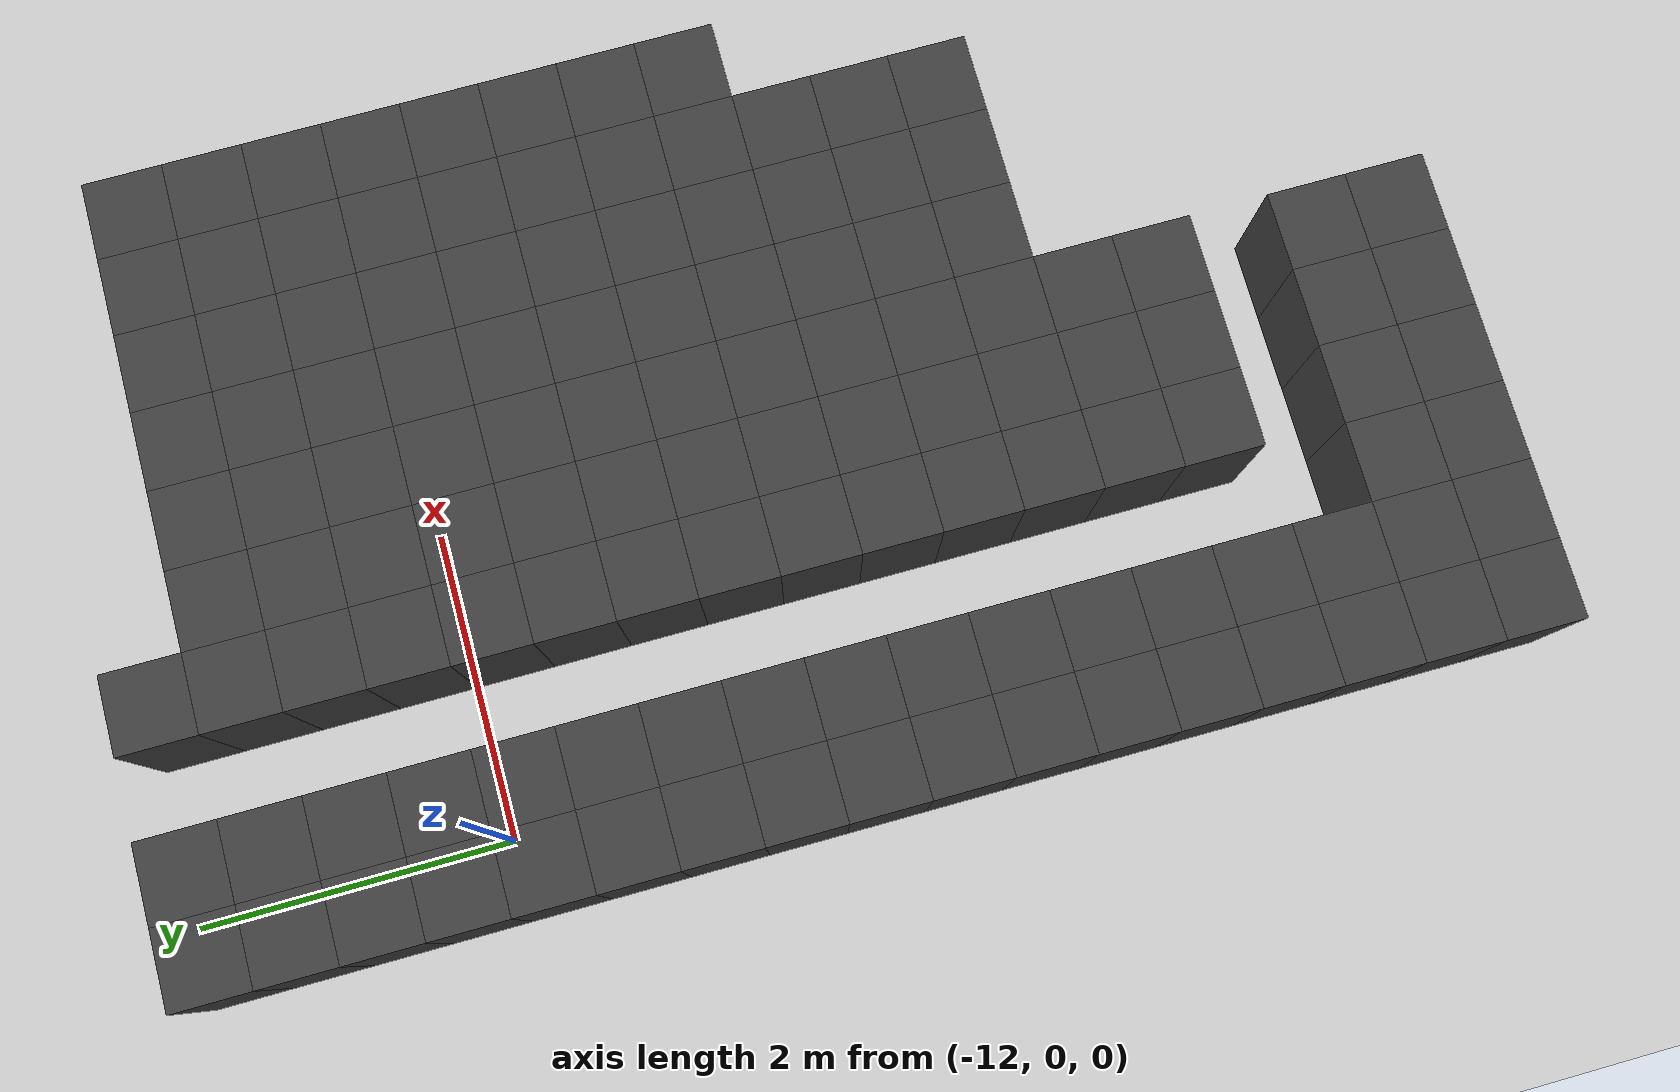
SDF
<sdf version="1.7">
 <world name="map_10726">
  <model name="ground_plane">
   <static>true</static>
   <link name="link">
    <collision name="collision">
     <geometry><plane><normal>0 0 1</normal><size>200 200</size></plane></geometry>
    </collision>
    <visual name="visual">
     <geometry><plane><normal>0 0 1</normal><size>200 200</size></plane></geometry>
     <material><ambient>0.8 0.8 0.8 1</ambient><diffuse>0.8 0.8 0.8 1</diffuse></material>
    </visual>
   </link>
  </model>
  <model name="maze_environment">
   <static>true</static>
   <link name="wall_962">
    <pose>-12.250 1.750 0.500 0 0 0</pose>
    <collision name="col"><geometry><box><size>0.5 0.5 1.0</size></box></geometry></collision>
    <visual name="vis">
     <geometry><box><size>0.5 0.5 1.0</size></box></geometry>
     <material><ambient>0.15 0.15 0.15 1</ambient><diffuse>0.25 0.25 0.25 1</diffuse></material>
    </visual>
   </link>
   <link name="wall_963">
    <pose>-11.750 1.750 0.500 0 0 0</pose>
    <collision name="col"><geometry><box><size>0.5 0.5 1.0</size></box></geometry></collision>
    <visual name="vis">
     <geometry><box><size>0.5 0.5 1.0</size></box></geometry>
     <material><ambient>0.15 0.15 0.15 1</ambient><diffuse>0.25 0.25 0.25 1</diffuse></material>
    </visual>
   </link>
   <link name="wall_964">
    <pose>-10.750 1.750 0.500 0 0 0</pose>
    <collision name="col"><geometry><box><size>0.5 0.5 1.0</size></box></geometry></collision>
    <visual name="vis">
     <geometry><box><size>0.5 0.5 1.0</size></box></geometry>
     <material><ambient>0.15 0.15 0.15 1</ambient><diffuse>0.25 0.25 0.25 1</diffuse></material>
    </visual>
   </link>
   <link name="wall_1004">
    <pose>-12.250 1.250 0.500 0 0 0</pose>
    <collision name="col"><geometry><box><size>0.5 0.5 1.0</size></box></geometry></collision>
    <visual name="vis">
     <geometry><box><size>0.5 0.5 1.0</size></box></geometry>
     <material><ambient>0.15 0.15 0.15 1</ambient><diffuse>0.25 0.25 0.25 1</diffuse></material>
    </visual>
   </link>
   <link name="wall_1005">
    <pose>-11.750 1.250 0.500 0 0 0</pose>
    <collision name="col"><geometry><box><size>0.5 0.5 1.0</size></box></geometry></collision>
    <visual name="vis">
     <geometry><box><size>0.5 0.5 1.0</size></box></geometry>
     <material><ambient>0.15 0.15 0.15 1</ambient><diffuse>0.25 0.25 0.25 1</diffuse></material>
    </visual>
   </link>
   <link name="wall_1006">
    <pose>-10.750 1.250 0.500 0 0 0</pose>
    <collision name="col"><geometry><box><size>0.5 0.5 1.0</size></box></geometry></collision>
    <visual name="vis">
     <geometry><box><size>0.5 0.5 1.0</size></box></geometry>
     <material><ambient>0.15 0.15 0.15 1</ambient><diffuse>0.25 0.25 0.25 1</diffuse></material>
    </visual>
   </link>
   <link name="wall_1007">
    <pose>-10.250 1.250 0.500 0 0 0</pose>
    <collision name="col"><geometry><box><size>0.5 0.5 1.0</size></box></geometry></collision>
    <visual name="vis">
     <geometry><box><size>0.5 0.5 1.0</size></box></geometry>
     <material><ambient>0.15 0.15 0.15 1</ambient><diffuse>0.25 0.25 0.25 1</diffuse></material>
    </visual>
   </link>
   <link name="wall_1008">
    <pose>-9.750 1.250 0.500 0 0 0</pose>
    <collision name="col"><geometry><box><size>0.5 0.5 1.0</size></box></geometry></collision>
    <visual name="vis">
     <geometry><box><size>0.5 0.5 1.0</size></box></geometry>
     <material><ambient>0.15 0.15 0.15 1</ambient><diffuse>0.25 0.25 0.25 1</diffuse></material>
    </visual>
   </link>
   <link name="wall_1009">
    <pose>-9.250 1.250 0.500 0 0 0</pose>
    <collision name="col"><geometry><box><size>0.5 0.5 1.0</size></box></geometry></collision>
    <visual name="vis">
     <geometry><box><size>0.5 0.5 1.0</size></box></geometry>
     <material><ambient>0.15 0.15 0.15 1</ambient><diffuse>0.25 0.25 0.25 1</diffuse></material>
    </visual>
   </link>
   <link name="wall_1010">
    <pose>-8.750 1.250 0.500 0 0 0</pose>
    <collision name="col"><geometry><box><size>0.5 0.5 1.0</size></box></geometry></collision>
    <visual name="vis">
     <geometry><box><size>0.5 0.5 1.0</size></box></geometry>
     <material><ambient>0.15 0.15 0.15 1</ambient><diffuse>0.25 0.25 0.25 1</diffuse></material>
    </visual>
   </link>
   <link name="wall_1011">
    <pose>-8.250 1.250 0.500 0 0 0</pose>
    <collision name="col"><geometry><box><size>0.5 0.5 1.0</size></box></geometry></collision>
    <visual name="vis">
     <geometry><box><size>0.5 0.5 1.0</size></box></geometry>
     <material><ambient>0.15 0.15 0.15 1</ambient><diffuse>0.25 0.25 0.25 1</diffuse></material>
    </visual>
   </link>
   <link name="wall_1012">
    <pose>-7.750 1.250 0.500 0 0 0</pose>
    <collision name="col"><geometry><box><size>0.5 0.5 1.0</size></box></geometry></collision>
    <visual name="vis">
     <geometry><box><size>0.5 0.5 1.0</size></box></geometry>
     <material><ambient>0.15 0.15 0.15 1</ambient><diffuse>0.25 0.25 0.25 1</diffuse></material>
    </visual>
   </link>
   <link name="wall_1046">
    <pose>-12.250 0.750 0.500 0 0 0</pose>
    <collision name="col"><geometry><box><size>0.5 0.5 1.0</size></box></geometry></collision>
    <visual name="vis">
     <geometry><box><size>0.5 0.5 1.0</size></box></geometry>
     <material><ambient>0.15 0.15 0.15 1</ambient><diffuse>0.25 0.25 0.25 1</diffuse></material>
    </visual>
   </link>
   <link name="wall_1047">
    <pose>-11.750 0.750 0.500 0 0 0</pose>
    <collision name="col"><geometry><box><size>0.5 0.5 1.0</size></box></geometry></collision>
    <visual name="vis">
     <geometry><box><size>0.5 0.5 1.0</size></box></geometry>
     <material><ambient>0.15 0.15 0.15 1</ambient><diffuse>0.25 0.25 0.25 1</diffuse></material>
    </visual>
   </link>
   <link name="wall_1048">
    <pose>-10.750 0.750 0.500 0 0 0</pose>
    <collision name="col"><geometry><box><size>0.5 0.5 1.0</size></box></geometry></collision>
    <visual name="vis">
     <geometry><box><size>0.5 0.5 1.0</size></box></geometry>
     <material><ambient>0.15 0.15 0.15 1</ambient><diffuse>0.25 0.25 0.25 1</diffuse></material>
    </visual>
   </link>
   <link name="wall_1049">
    <pose>-10.250 0.750 0.500 0 0 0</pose>
    <collision name="col"><geometry><box><size>0.5 0.5 1.0</size></box></geometry></collision>
    <visual name="vis">
     <geometry><box><size>0.5 0.5 1.0</size></box></geometry>
     <material><ambient>0.15 0.15 0.15 1</ambient><diffuse>0.25 0.25 0.25 1</diffuse></material>
    </visual>
   </link>
   <link name="wall_1050">
    <pose>-9.750 0.750 0.500 0 0 0</pose>
    <collision name="col"><geometry><box><size>0.5 0.5 1.0</size></box></geometry></collision>
    <visual name="vis">
     <geometry><box><size>0.5 0.5 1.0</size></box></geometry>
     <material><ambient>0.15 0.15 0.15 1</ambient><diffuse>0.25 0.25 0.25 1</diffuse></material>
    </visual>
   </link>
   <link name="wall_1051">
    <pose>-9.250 0.750 0.500 0 0 0</pose>
    <collision name="col"><geometry><box><size>0.5 0.5 1.0</size></box></geometry></collision>
    <visual name="vis">
     <geometry><box><size>0.5 0.5 1.0</size></box></geometry>
     <material><ambient>0.15 0.15 0.15 1</ambient><diffuse>0.25 0.25 0.25 1</diffuse></material>
    </visual>
   </link>
   <link name="wall_1052">
    <pose>-8.750 0.750 0.500 0 0 0</pose>
    <collision name="col"><geometry><box><size>0.5 0.5 1.0</size></box></geometry></collision>
    <visual name="vis">
     <geometry><box><size>0.5 0.5 1.0</size></box></geometry>
     <material><ambient>0.15 0.15 0.15 1</ambient><diffuse>0.25 0.25 0.25 1</diffuse></material>
    </visual>
   </link>
   <link name="wall_1053">
    <pose>-8.250 0.750 0.500 0 0 0</pose>
    <collision name="col"><geometry><box><size>0.5 0.5 1.0</size></box></geometry></collision>
    <visual name="vis">
     <geometry><box><size>0.5 0.5 1.0</size></box></geometry>
     <material><ambient>0.15 0.15 0.15 1</ambient><diffuse>0.25 0.25 0.25 1</diffuse></material>
    </visual>
   </link>
   <link name="wall_1054">
    <pose>-7.750 0.750 0.500 0 0 0</pose>
    <collision name="col"><geometry><box><size>0.5 0.5 1.0</size></box></geometry></collision>
    <visual name="vis">
     <geometry><box><size>0.5 0.5 1.0</size></box></geometry>
     <material><ambient>0.15 0.15 0.15 1</ambient><diffuse>0.25 0.25 0.25 1</diffuse></material>
    </visual>
   </link>
   <link name="wall_1078">
    <pose>-12.250 0.250 0.500 0 0 0</pose>
    <collision name="col"><geometry><box><size>0.5 0.5 1.0</size></box></geometry></collision>
    <visual name="vis">
     <geometry><box><size>0.5 0.5 1.0</size></box></geometry>
     <material><ambient>0.15 0.15 0.15 1</ambient><diffuse>0.25 0.25 0.25 1</diffuse></material>
    </visual>
   </link>
   <link name="wall_1079">
    <pose>-11.750 0.250 0.500 0 0 0</pose>
    <collision name="col"><geometry><box><size>0.5 0.5 1.0</size></box></geometry></collision>
    <visual name="vis">
     <geometry><box><size>0.5 0.5 1.0</size></box></geometry>
     <material><ambient>0.15 0.15 0.15 1</ambient><diffuse>0.25 0.25 0.25 1</diffuse></material>
    </visual>
   </link>
   <link name="wall_1080">
    <pose>-10.750 0.250 0.500 0 0 0</pose>
    <collision name="col"><geometry><box><size>0.5 0.5 1.0</size></box></geometry></collision>
    <visual name="vis">
     <geometry><box><size>0.5 0.5 1.0</size></box></geometry>
     <material><ambient>0.15 0.15 0.15 1</ambient><diffuse>0.25 0.25 0.25 1</diffuse></material>
    </visual>
   </link>
   <link name="wall_1081">
    <pose>-10.250 0.250 0.500 0 0 0</pose>
    <collision name="col"><geometry><box><size>0.5 0.5 1.0</size></box></geometry></collision>
    <visual name="vis">
     <geometry><box><size>0.5 0.5 1.0</size></box></geometry>
     <material><ambient>0.15 0.15 0.15 1</ambient><diffuse>0.25 0.25 0.25 1</diffuse></material>
    </visual>
   </link>
   <link name="wall_1082">
    <pose>-9.750 0.250 0.500 0 0 0</pose>
    <collision name="col"><geometry><box><size>0.5 0.5 1.0</size></box></geometry></collision>
    <visual name="vis">
     <geometry><box><size>0.5 0.5 1.0</size></box></geometry>
     <material><ambient>0.15 0.15 0.15 1</ambient><diffuse>0.25 0.25 0.25 1</diffuse></material>
    </visual>
   </link>
   <link name="wall_1083">
    <pose>-9.250 0.250 0.500 0 0 0</pose>
    <collision name="col"><geometry><box><size>0.5 0.5 1.0</size></box></geometry></collision>
    <visual name="vis">
     <geometry><box><size>0.5 0.5 1.0</size></box></geometry>
     <material><ambient>0.15 0.15 0.15 1</ambient><diffuse>0.25 0.25 0.25 1</diffuse></material>
    </visual>
   </link>
   <link name="wall_1084">
    <pose>-8.750 0.250 0.500 0 0 0</pose>
    <collision name="col"><geometry><box><size>0.5 0.5 1.0</size></box></geometry></collision>
    <visual name="vis">
     <geometry><box><size>0.5 0.5 1.0</size></box></geometry>
     <material><ambient>0.15 0.15 0.15 1</ambient><diffuse>0.25 0.25 0.25 1</diffuse></material>
    </visual>
   </link>
   <link name="wall_1085">
    <pose>-8.250 0.250 0.500 0 0 0</pose>
    <collision name="col"><geometry><box><size>0.5 0.5 1.0</size></box></geometry></collision>
    <visual name="vis">
     <geometry><box><size>0.5 0.5 1.0</size></box></geometry>
     <material><ambient>0.15 0.15 0.15 1</ambient><diffuse>0.25 0.25 0.25 1</diffuse></material>
    </visual>
   </link>
   <link name="wall_1086">
    <pose>-7.750 0.250 0.500 0 0 0</pose>
    <collision name="col"><geometry><box><size>0.5 0.5 1.0</size></box></geometry></collision>
    <visual name="vis">
     <geometry><box><size>0.5 0.5 1.0</size></box></geometry>
     <material><ambient>0.15 0.15 0.15 1</ambient><diffuse>0.25 0.25 0.25 1</diffuse></material>
    </visual>
   </link>
   <link name="wall_1119">
    <pose>-12.250 -0.250 0.500 0 0 0</pose>
    <collision name="col"><geometry><box><size>0.5 0.5 1.0</size></box></geometry></collision>
    <visual name="vis">
     <geometry><box><size>0.5 0.5 1.0</size></box></geometry>
     <material><ambient>0.15 0.15 0.15 1</ambient><diffuse>0.25 0.25 0.25 1</diffuse></material>
    </visual>
   </link>
   <link name="wall_1120">
    <pose>-11.750 -0.250 0.500 0 0 0</pose>
    <collision name="col"><geometry><box><size>0.5 0.5 1.0</size></box></geometry></collision>
    <visual name="vis">
     <geometry><box><size>0.5 0.5 1.0</size></box></geometry>
     <material><ambient>0.15 0.15 0.15 1</ambient><diffuse>0.25 0.25 0.25 1</diffuse></material>
    </visual>
   </link>
   <link name="wall_1121">
    <pose>-10.750 -0.250 0.500 0 0 0</pose>
    <collision name="col"><geometry><box><size>0.5 0.5 1.0</size></box></geometry></collision>
    <visual name="vis">
     <geometry><box><size>0.5 0.5 1.0</size></box></geometry>
     <material><ambient>0.15 0.15 0.15 1</ambient><diffuse>0.25 0.25 0.25 1</diffuse></material>
    </visual>
   </link>
   <link name="wall_1122">
    <pose>-10.250 -0.250 0.500 0 0 0</pose>
    <collision name="col"><geometry><box><size>0.5 0.5 1.0</size></box></geometry></collision>
    <visual name="vis">
     <geometry><box><size>0.5 0.5 1.0</size></box></geometry>
     <material><ambient>0.15 0.15 0.15 1</ambient><diffuse>0.25 0.25 0.25 1</diffuse></material>
    </visual>
   </link>
   <link name="wall_1123">
    <pose>-9.750 -0.250 0.500 0 0 0</pose>
    <collision name="col"><geometry><box><size>0.5 0.5 1.0</size></box></geometry></collision>
    <visual name="vis">
     <geometry><box><size>0.5 0.5 1.0</size></box></geometry>
     <material><ambient>0.15 0.15 0.15 1</ambient><diffuse>0.25 0.25 0.25 1</diffuse></material>
    </visual>
   </link>
   <link name="wall_1124">
    <pose>-9.250 -0.250 0.500 0 0 0</pose>
    <collision name="col"><geometry><box><size>0.5 0.5 1.0</size></box></geometry></collision>
    <visual name="vis">
     <geometry><box><size>0.5 0.5 1.0</size></box></geometry>
     <material><ambient>0.15 0.15 0.15 1</ambient><diffuse>0.25 0.25 0.25 1</diffuse></material>
    </visual>
   </link>
   <link name="wall_1125">
    <pose>-8.750 -0.250 0.500 0 0 0</pose>
    <collision name="col"><geometry><box><size>0.5 0.5 1.0</size></box></geometry></collision>
    <visual name="vis">
     <geometry><box><size>0.5 0.5 1.0</size></box></geometry>
     <material><ambient>0.15 0.15 0.15 1</ambient><diffuse>0.25 0.25 0.25 1</diffuse></material>
    </visual>
   </link>
   <link name="wall_1126">
    <pose>-8.250 -0.250 0.500 0 0 0</pose>
    <collision name="col"><geometry><box><size>0.5 0.5 1.0</size></box></geometry></collision>
    <visual name="vis">
     <geometry><box><size>0.5 0.5 1.0</size></box></geometry>
     <material><ambient>0.15 0.15 0.15 1</ambient><diffuse>0.25 0.25 0.25 1</diffuse></material>
    </visual>
   </link>
   <link name="wall_1127">
    <pose>-7.750 -0.250 0.500 0 0 0</pose>
    <collision name="col"><geometry><box><size>0.5 0.5 1.0</size></box></geometry></collision>
    <visual name="vis">
     <geometry><box><size>0.5 0.5 1.0</size></box></geometry>
     <material><ambient>0.15 0.15 0.15 1</ambient><diffuse>0.25 0.25 0.25 1</diffuse></material>
    </visual>
   </link>
   <link name="wall_1160">
    <pose>-12.250 -0.750 0.500 0 0 0</pose>
    <collision name="col"><geometry><box><size>0.5 0.5 1.0</size></box></geometry></collision>
    <visual name="vis">
     <geometry><box><size>0.5 0.5 1.0</size></box></geometry>
     <material><ambient>0.15 0.15 0.15 1</ambient><diffuse>0.25 0.25 0.25 1</diffuse></material>
    </visual>
   </link>
   <link name="wall_1161">
    <pose>-11.750 -0.750 0.500 0 0 0</pose>
    <collision name="col"><geometry><box><size>0.5 0.5 1.0</size></box></geometry></collision>
    <visual name="vis">
     <geometry><box><size>0.5 0.5 1.0</size></box></geometry>
     <material><ambient>0.15 0.15 0.15 1</ambient><diffuse>0.25 0.25 0.25 1</diffuse></material>
    </visual>
   </link>
   <link name="wall_1162">
    <pose>-10.750 -0.750 0.500 0 0 0</pose>
    <collision name="col"><geometry><box><size>0.5 0.5 1.0</size></box></geometry></collision>
    <visual name="vis">
     <geometry><box><size>0.5 0.5 1.0</size></box></geometry>
     <material><ambient>0.15 0.15 0.15 1</ambient><diffuse>0.25 0.25 0.25 1</diffuse></material>
    </visual>
   </link>
   <link name="wall_1163">
    <pose>-10.250 -0.750 0.500 0 0 0</pose>
    <collision name="col"><geometry><box><size>0.5 0.5 1.0</size></box></geometry></collision>
    <visual name="vis">
     <geometry><box><size>0.5 0.5 1.0</size></box></geometry>
     <material><ambient>0.15 0.15 0.15 1</ambient><diffuse>0.25 0.25 0.25 1</diffuse></material>
    </visual>
   </link>
   <link name="wall_1164">
    <pose>-9.750 -0.750 0.500 0 0 0</pose>
    <collision name="col"><geometry><box><size>0.5 0.5 1.0</size></box></geometry></collision>
    <visual name="vis">
     <geometry><box><size>0.5 0.5 1.0</size></box></geometry>
     <material><ambient>0.15 0.15 0.15 1</ambient><diffuse>0.25 0.25 0.25 1</diffuse></material>
    </visual>
   </link>
   <link name="wall_1165">
    <pose>-9.250 -0.750 0.500 0 0 0</pose>
    <collision name="col"><geometry><box><size>0.5 0.5 1.0</size></box></geometry></collision>
    <visual name="vis">
     <geometry><box><size>0.5 0.5 1.0</size></box></geometry>
     <material><ambient>0.15 0.15 0.15 1</ambient><diffuse>0.25 0.25 0.25 1</diffuse></material>
    </visual>
   </link>
   <link name="wall_1166">
    <pose>-8.750 -0.750 0.500 0 0 0</pose>
    <collision name="col"><geometry><box><size>0.5 0.5 1.0</size></box></geometry></collision>
    <visual name="vis">
     <geometry><box><size>0.5 0.5 1.0</size></box></geometry>
     <material><ambient>0.15 0.15 0.15 1</ambient><diffuse>0.25 0.25 0.25 1</diffuse></material>
    </visual>
   </link>
   <link name="wall_1167">
    <pose>-8.250 -0.750 0.500 0 0 0</pose>
    <collision name="col"><geometry><box><size>0.5 0.5 1.0</size></box></geometry></collision>
    <visual name="vis">
     <geometry><box><size>0.5 0.5 1.0</size></box></geometry>
     <material><ambient>0.15 0.15 0.15 1</ambient><diffuse>0.25 0.25 0.25 1</diffuse></material>
    </visual>
   </link>
   <link name="wall_1168">
    <pose>-7.750 -0.750 0.500 0 0 0</pose>
    <collision name="col"><geometry><box><size>0.5 0.5 1.0</size></box></geometry></collision>
    <visual name="vis">
     <geometry><box><size>0.5 0.5 1.0</size></box></geometry>
     <material><ambient>0.15 0.15 0.15 1</ambient><diffuse>0.25 0.25 0.25 1</diffuse></material>
    </visual>
   </link>
   <link name="wall_1200">
    <pose>-12.250 -1.250 0.500 0 0 0</pose>
    <collision name="col"><geometry><box><size>0.5 0.5 1.0</size></box></geometry></collision>
    <visual name="vis">
     <geometry><box><size>0.5 0.5 1.0</size></box></geometry>
     <material><ambient>0.15 0.15 0.15 1</ambient><diffuse>0.25 0.25 0.25 1</diffuse></material>
    </visual>
   </link>
   <link name="wall_1201">
    <pose>-11.750 -1.250 0.500 0 0 0</pose>
    <collision name="col"><geometry><box><size>0.5 0.5 1.0</size></box></geometry></collision>
    <visual name="vis">
     <geometry><box><size>0.5 0.5 1.0</size></box></geometry>
     <material><ambient>0.15 0.15 0.15 1</ambient><diffuse>0.25 0.25 0.25 1</diffuse></material>
    </visual>
   </link>
   <link name="wall_1202">
    <pose>-10.750 -1.250 0.500 0 0 0</pose>
    <collision name="col"><geometry><box><size>0.5 0.5 1.0</size></box></geometry></collision>
    <visual name="vis">
     <geometry><box><size>0.5 0.5 1.0</size></box></geometry>
     <material><ambient>0.15 0.15 0.15 1</ambient><diffuse>0.25 0.25 0.25 1</diffuse></material>
    </visual>
   </link>
   <link name="wall_1203">
    <pose>-10.250 -1.250 0.500 0 0 0</pose>
    <collision name="col"><geometry><box><size>0.5 0.5 1.0</size></box></geometry></collision>
    <visual name="vis">
     <geometry><box><size>0.5 0.5 1.0</size></box></geometry>
     <material><ambient>0.15 0.15 0.15 1</ambient><diffuse>0.25 0.25 0.25 1</diffuse></material>
    </visual>
   </link>
   <link name="wall_1204">
    <pose>-9.750 -1.250 0.500 0 0 0</pose>
    <collision name="col"><geometry><box><size>0.5 0.5 1.0</size></box></geometry></collision>
    <visual name="vis">
     <geometry><box><size>0.5 0.5 1.0</size></box></geometry>
     <material><ambient>0.15 0.15 0.15 1</ambient><diffuse>0.25 0.25 0.25 1</diffuse></material>
    </visual>
   </link>
   <link name="wall_1205">
    <pose>-9.250 -1.250 0.500 0 0 0</pose>
    <collision name="col"><geometry><box><size>0.5 0.5 1.0</size></box></geometry></collision>
    <visual name="vis">
     <geometry><box><size>0.5 0.5 1.0</size></box></geometry>
     <material><ambient>0.15 0.15 0.15 1</ambient><diffuse>0.25 0.25 0.25 1</diffuse></material>
    </visual>
   </link>
   <link name="wall_1206">
    <pose>-8.750 -1.250 0.500 0 0 0</pose>
    <collision name="col"><geometry><box><size>0.5 0.5 1.0</size></box></geometry></collision>
    <visual name="vis">
     <geometry><box><size>0.5 0.5 1.0</size></box></geometry>
     <material><ambient>0.15 0.15 0.15 1</ambient><diffuse>0.25 0.25 0.25 1</diffuse></material>
    </visual>
   </link>
   <link name="wall_1207">
    <pose>-8.250 -1.250 0.500 0 0 0</pose>
    <collision name="col"><geometry><box><size>0.5 0.5 1.0</size></box></geometry></collision>
    <visual name="vis">
     <geometry><box><size>0.5 0.5 1.0</size></box></geometry>
     <material><ambient>0.15 0.15 0.15 1</ambient><diffuse>0.25 0.25 0.25 1</diffuse></material>
    </visual>
   </link>
   <link name="wall_1208">
    <pose>-7.750 -1.250 0.500 0 0 0</pose>
    <collision name="col"><geometry><box><size>0.5 0.5 1.0</size></box></geometry></collision>
    <visual name="vis">
     <geometry><box><size>0.5 0.5 1.0</size></box></geometry>
     <material><ambient>0.15 0.15 0.15 1</ambient><diffuse>0.25 0.25 0.25 1</diffuse></material>
    </visual>
   </link>
   <link name="wall_1240">
    <pose>-12.250 -1.750 0.500 0 0 0</pose>
    <collision name="col"><geometry><box><size>0.5 0.5 1.0</size></box></geometry></collision>
    <visual name="vis">
     <geometry><box><size>0.5 0.5 1.0</size></box></geometry>
     <material><ambient>0.15 0.15 0.15 1</ambient><diffuse>0.25 0.25 0.25 1</diffuse></material>
    </visual>
   </link>
   <link name="wall_1241">
    <pose>-11.750 -1.750 0.500 0 0 0</pose>
    <collision name="col"><geometry><box><size>0.5 0.5 1.0</size></box></geometry></collision>
    <visual name="vis">
     <geometry><box><size>0.5 0.5 1.0</size></box></geometry>
     <material><ambient>0.15 0.15 0.15 1</ambient><diffuse>0.25 0.25 0.25 1</diffuse></material>
    </visual>
   </link>
   <link name="wall_1242">
    <pose>-10.750 -1.750 0.500 0 0 0</pose>
    <collision name="col"><geometry><box><size>0.5 0.5 1.0</size></box></geometry></collision>
    <visual name="vis">
     <geometry><box><size>0.5 0.5 1.0</size></box></geometry>
     <material><ambient>0.15 0.15 0.15 1</ambient><diffuse>0.25 0.25 0.25 1</diffuse></material>
    </visual>
   </link>
   <link name="wall_1243">
    <pose>-10.250 -1.750 0.500 0 0 0</pose>
    <collision name="col"><geometry><box><size>0.5 0.5 1.0</size></box></geometry></collision>
    <visual name="vis">
     <geometry><box><size>0.5 0.5 1.0</size></box></geometry>
     <material><ambient>0.15 0.15 0.15 1</ambient><diffuse>0.25 0.25 0.25 1</diffuse></material>
    </visual>
   </link>
   <link name="wall_1244">
    <pose>-9.750 -1.750 0.500 0 0 0</pose>
    <collision name="col"><geometry><box><size>0.5 0.5 1.0</size></box></geometry></collision>
    <visual name="vis">
     <geometry><box><size>0.5 0.5 1.0</size></box></geometry>
     <material><ambient>0.15 0.15 0.15 1</ambient><diffuse>0.25 0.25 0.25 1</diffuse></material>
    </visual>
   </link>
   <link name="wall_1245">
    <pose>-9.250 -1.750 0.500 0 0 0</pose>
    <collision name="col"><geometry><box><size>0.5 0.5 1.0</size></box></geometry></collision>
    <visual name="vis">
     <geometry><box><size>0.5 0.5 1.0</size></box></geometry>
     <material><ambient>0.15 0.15 0.15 1</ambient><diffuse>0.25 0.25 0.25 1</diffuse></material>
    </visual>
   </link>
   <link name="wall_1246">
    <pose>-8.750 -1.750 0.500 0 0 0</pose>
    <collision name="col"><geometry><box><size>0.5 0.5 1.0</size></box></geometry></collision>
    <visual name="vis">
     <geometry><box><size>0.5 0.5 1.0</size></box></geometry>
     <material><ambient>0.15 0.15 0.15 1</ambient><diffuse>0.25 0.25 0.25 1</diffuse></material>
    </visual>
   </link>
   <link name="wall_1247">
    <pose>-8.250 -1.750 0.500 0 0 0</pose>
    <collision name="col"><geometry><box><size>0.5 0.5 1.0</size></box></geometry></collision>
    <visual name="vis">
     <geometry><box><size>0.5 0.5 1.0</size></box></geometry>
     <material><ambient>0.15 0.15 0.15 1</ambient><diffuse>0.25 0.25 0.25 1</diffuse></material>
    </visual>
   </link>
   <link name="wall_1248">
    <pose>-7.750 -1.750 0.500 0 0 0</pose>
    <collision name="col"><geometry><box><size>0.5 0.5 1.0</size></box></geometry></collision>
    <visual name="vis">
     <geometry><box><size>0.5 0.5 1.0</size></box></geometry>
     <material><ambient>0.15 0.15 0.15 1</ambient><diffuse>0.25 0.25 0.25 1</diffuse></material>
    </visual>
   </link>
   <link name="wall_1272">
    <pose>-12.250 -2.250 0.500 0 0 0</pose>
    <collision name="col"><geometry><box><size>0.5 0.5 1.0</size></box></geometry></collision>
    <visual name="vis">
     <geometry><box><size>0.5 0.5 1.0</size></box></geometry>
     <material><ambient>0.15 0.15 0.15 1</ambient><diffuse>0.25 0.25 0.25 1</diffuse></material>
    </visual>
   </link>
   <link name="wall_1273">
    <pose>-11.750 -2.250 0.500 0 0 0</pose>
    <collision name="col"><geometry><box><size>0.5 0.5 1.0</size></box></geometry></collision>
    <visual name="vis">
     <geometry><box><size>0.5 0.5 1.0</size></box></geometry>
     <material><ambient>0.15 0.15 0.15 1</ambient><diffuse>0.25 0.25 0.25 1</diffuse></material>
    </visual>
   </link>
   <link name="wall_1274">
    <pose>-10.750 -2.250 0.500 0 0 0</pose>
    <collision name="col"><geometry><box><size>0.5 0.5 1.0</size></box></geometry></collision>
    <visual name="vis">
     <geometry><box><size>0.5 0.5 1.0</size></box></geometry>
     <material><ambient>0.15 0.15 0.15 1</ambient><diffuse>0.25 0.25 0.25 1</diffuse></material>
    </visual>
   </link>
   <link name="wall_1275">
    <pose>-10.250 -2.250 0.500 0 0 0</pose>
    <collision name="col"><geometry><box><size>0.5 0.5 1.0</size></box></geometry></collision>
    <visual name="vis">
     <geometry><box><size>0.5 0.5 1.0</size></box></geometry>
     <material><ambient>0.15 0.15 0.15 1</ambient><diffuse>0.25 0.25 0.25 1</diffuse></material>
    </visual>
   </link>
   <link name="wall_1276">
    <pose>-9.750 -2.250 0.500 0 0 0</pose>
    <collision name="col"><geometry><box><size>0.5 0.5 1.0</size></box></geometry></collision>
    <visual name="vis">
     <geometry><box><size>0.5 0.5 1.0</size></box></geometry>
     <material><ambient>0.15 0.15 0.15 1</ambient><diffuse>0.25 0.25 0.25 1</diffuse></material>
    </visual>
   </link>
   <link name="wall_1277">
    <pose>-9.250 -2.250 0.500 0 0 0</pose>
    <collision name="col"><geometry><box><size>0.5 0.5 1.0</size></box></geometry></collision>
    <visual name="vis">
     <geometry><box><size>0.5 0.5 1.0</size></box></geometry>
     <material><ambient>0.15 0.15 0.15 1</ambient><diffuse>0.25 0.25 0.25 1</diffuse></material>
    </visual>
   </link>
   <link name="wall_1278">
    <pose>-8.750 -2.250 0.500 0 0 0</pose>
    <collision name="col"><geometry><box><size>0.5 0.5 1.0</size></box></geometry></collision>
    <visual name="vis">
     <geometry><box><size>0.5 0.5 1.0</size></box></geometry>
     <material><ambient>0.15 0.15 0.15 1</ambient><diffuse>0.25 0.25 0.25 1</diffuse></material>
    </visual>
   </link>
   <link name="wall_1279">
    <pose>-8.250 -2.250 0.500 0 0 0</pose>
    <collision name="col"><geometry><box><size>0.5 0.5 1.0</size></box></geometry></collision>
    <visual name="vis">
     <geometry><box><size>0.5 0.5 1.0</size></box></geometry>
     <material><ambient>0.15 0.15 0.15 1</ambient><diffuse>0.25 0.25 0.25 1</diffuse></material>
    </visual>
   </link>
   <link name="wall_1280">
    <pose>-7.750 -2.250 0.500 0 0 0</pose>
    <collision name="col"><geometry><box><size>0.5 0.5 1.0</size></box></geometry></collision>
    <visual name="vis">
     <geometry><box><size>0.5 0.5 1.0</size></box></geometry>
     <material><ambient>0.15 0.15 0.15 1</ambient><diffuse>0.25 0.25 0.25 1</diffuse></material>
    </visual>
   </link>
   <link name="wall_1304">
    <pose>-12.250 -2.750 0.500 0 0 0</pose>
    <collision name="col"><geometry><box><size>0.5 0.5 1.0</size></box></geometry></collision>
    <visual name="vis">
     <geometry><box><size>0.5 0.5 1.0</size></box></geometry>
     <material><ambient>0.15 0.15 0.15 1</ambient><diffuse>0.25 0.25 0.25 1</diffuse></material>
    </visual>
   </link>
   <link name="wall_1305">
    <pose>-11.750 -2.750 0.500 0 0 0</pose>
    <collision name="col"><geometry><box><size>0.5 0.5 1.0</size></box></geometry></collision>
    <visual name="vis">
     <geometry><box><size>0.5 0.5 1.0</size></box></geometry>
     <material><ambient>0.15 0.15 0.15 1</ambient><diffuse>0.25 0.25 0.25 1</diffuse></material>
    </visual>
   </link>
   <link name="wall_1306">
    <pose>-10.750 -2.750 0.500 0 0 0</pose>
    <collision name="col"><geometry><box><size>0.5 0.5 1.0</size></box></geometry></collision>
    <visual name="vis">
     <geometry><box><size>0.5 0.5 1.0</size></box></geometry>
     <material><ambient>0.15 0.15 0.15 1</ambient><diffuse>0.25 0.25 0.25 1</diffuse></material>
    </visual>
   </link>
   <link name="wall_1307">
    <pose>-10.250 -2.750 0.500 0 0 0</pose>
    <collision name="col"><geometry><box><size>0.5 0.5 1.0</size></box></geometry></collision>
    <visual name="vis">
     <geometry><box><size>0.5 0.5 1.0</size></box></geometry>
     <material><ambient>0.15 0.15 0.15 1</ambient><diffuse>0.25 0.25 0.25 1</diffuse></material>
    </visual>
   </link>
   <link name="wall_1308">
    <pose>-9.750 -2.750 0.500 0 0 0</pose>
    <collision name="col"><geometry><box><size>0.5 0.5 1.0</size></box></geometry></collision>
    <visual name="vis">
     <geometry><box><size>0.5 0.5 1.0</size></box></geometry>
     <material><ambient>0.15 0.15 0.15 1</ambient><diffuse>0.25 0.25 0.25 1</diffuse></material>
    </visual>
   </link>
   <link name="wall_1309">
    <pose>-9.250 -2.750 0.500 0 0 0</pose>
    <collision name="col"><geometry><box><size>0.5 0.5 1.0</size></box></geometry></collision>
    <visual name="vis">
     <geometry><box><size>0.5 0.5 1.0</size></box></geometry>
     <material><ambient>0.15 0.15 0.15 1</ambient><diffuse>0.25 0.25 0.25 1</diffuse></material>
    </visual>
   </link>
   <link name="wall_1310">
    <pose>-8.750 -2.750 0.500 0 0 0</pose>
    <collision name="col"><geometry><box><size>0.5 0.5 1.0</size></box></geometry></collision>
    <visual name="vis">
     <geometry><box><size>0.5 0.5 1.0</size></box></geometry>
     <material><ambient>0.15 0.15 0.15 1</ambient><diffuse>0.25 0.25 0.25 1</diffuse></material>
    </visual>
   </link>
   <link name="wall_1311">
    <pose>-8.250 -2.750 0.500 0 0 0</pose>
    <collision name="col"><geometry><box><size>0.5 0.5 1.0</size></box></geometry></collision>
    <visual name="vis">
     <geometry><box><size>0.5 0.5 1.0</size></box></geometry>
     <material><ambient>0.15 0.15 0.15 1</ambient><diffuse>0.25 0.25 0.25 1</diffuse></material>
    </visual>
   </link>
   <link name="wall_1328">
    <pose>-12.250 -3.250 0.500 0 0 0</pose>
    <collision name="col"><geometry><box><size>0.5 0.5 1.0</size></box></geometry></collision>
    <visual name="vis">
     <geometry><box><size>0.5 0.5 1.0</size></box></geometry>
     <material><ambient>0.15 0.15 0.15 1</ambient><diffuse>0.25 0.25 0.25 1</diffuse></material>
    </visual>
   </link>
   <link name="wall_1329">
    <pose>-11.750 -3.250 0.500 0 0 0</pose>
    <collision name="col"><geometry><box><size>0.5 0.5 1.0</size></box></geometry></collision>
    <visual name="vis">
     <geometry><box><size>0.5 0.5 1.0</size></box></geometry>
     <material><ambient>0.15 0.15 0.15 1</ambient><diffuse>0.25 0.25 0.25 1</diffuse></material>
    </visual>
   </link>
   <link name="wall_1330">
    <pose>-10.750 -3.250 0.500 0 0 0</pose>
    <collision name="col"><geometry><box><size>0.5 0.5 1.0</size></box></geometry></collision>
    <visual name="vis">
     <geometry><box><size>0.5 0.5 1.0</size></box></geometry>
     <material><ambient>0.15 0.15 0.15 1</ambient><diffuse>0.25 0.25 0.25 1</diffuse></material>
    </visual>
   </link>
   <link name="wall_1331">
    <pose>-10.250 -3.250 0.500 0 0 0</pose>
    <collision name="col"><geometry><box><size>0.5 0.5 1.0</size></box></geometry></collision>
    <visual name="vis">
     <geometry><box><size>0.5 0.5 1.0</size></box></geometry>
     <material><ambient>0.15 0.15 0.15 1</ambient><diffuse>0.25 0.25 0.25 1</diffuse></material>
    </visual>
   </link>
   <link name="wall_1332">
    <pose>-9.750 -3.250 0.500 0 0 0</pose>
    <collision name="col"><geometry><box><size>0.5 0.5 1.0</size></box></geometry></collision>
    <visual name="vis">
     <geometry><box><size>0.5 0.5 1.0</size></box></geometry>
     <material><ambient>0.15 0.15 0.15 1</ambient><diffuse>0.25 0.25 0.25 1</diffuse></material>
    </visual>
   </link>
   <link name="wall_1333">
    <pose>-9.250 -3.250 0.500 0 0 0</pose>
    <collision name="col"><geometry><box><size>0.5 0.5 1.0</size></box></geometry></collision>
    <visual name="vis">
     <geometry><box><size>0.5 0.5 1.0</size></box></geometry>
     <material><ambient>0.15 0.15 0.15 1</ambient><diffuse>0.25 0.25 0.25 1</diffuse></material>
    </visual>
   </link>
   <link name="wall_1334">
    <pose>-8.750 -3.250 0.500 0 0 0</pose>
    <collision name="col"><geometry><box><size>0.5 0.5 1.0</size></box></geometry></collision>
    <visual name="vis">
     <geometry><box><size>0.5 0.5 1.0</size></box></geometry>
     <material><ambient>0.15 0.15 0.15 1</ambient><diffuse>0.25 0.25 0.25 1</diffuse></material>
    </visual>
   </link>
   <link name="wall_1335">
    <pose>-8.250 -3.250 0.500 0 0 0</pose>
    <collision name="col"><geometry><box><size>0.5 0.5 1.0</size></box></geometry></collision>
    <visual name="vis">
     <geometry><box><size>0.5 0.5 1.0</size></box></geometry>
     <material><ambient>0.15 0.15 0.15 1</ambient><diffuse>0.25 0.25 0.25 1</diffuse></material>
    </visual>
   </link>
   <link name="wall_1360">
    <pose>-12.250 -3.750 0.500 0 0 0</pose>
    <collision name="col"><geometry><box><size>0.5 0.5 1.0</size></box></geometry></collision>
    <visual name="vis">
     <geometry><box><size>0.5 0.5 1.0</size></box></geometry>
     <material><ambient>0.15 0.15 0.15 1</ambient><diffuse>0.25 0.25 0.25 1</diffuse></material>
    </visual>
   </link>
   <link name="wall_1361">
    <pose>-11.750 -3.750 0.500 0 0 0</pose>
    <collision name="col"><geometry><box><size>0.5 0.5 1.0</size></box></geometry></collision>
    <visual name="vis">
     <geometry><box><size>0.5 0.5 1.0</size></box></geometry>
     <material><ambient>0.15 0.15 0.15 1</ambient><diffuse>0.25 0.25 0.25 1</diffuse></material>
    </visual>
   </link>
   <link name="wall_1362">
    <pose>-10.750 -3.750 0.500 0 0 0</pose>
    <collision name="col"><geometry><box><size>0.5 0.5 1.0</size></box></geometry></collision>
    <visual name="vis">
     <geometry><box><size>0.5 0.5 1.0</size></box></geometry>
     <material><ambient>0.15 0.15 0.15 1</ambient><diffuse>0.25 0.25 0.25 1</diffuse></material>
    </visual>
   </link>
   <link name="wall_1363">
    <pose>-10.250 -3.750 0.500 0 0 0</pose>
    <collision name="col"><geometry><box><size>0.5 0.5 1.0</size></box></geometry></collision>
    <visual name="vis">
     <geometry><box><size>0.5 0.5 1.0</size></box></geometry>
     <material><ambient>0.15 0.15 0.15 1</ambient><diffuse>0.25 0.25 0.25 1</diffuse></material>
    </visual>
   </link>
   <link name="wall_1364">
    <pose>-9.750 -3.750 0.500 0 0 0</pose>
    <collision name="col"><geometry><box><size>0.5 0.5 1.0</size></box></geometry></collision>
    <visual name="vis">
     <geometry><box><size>0.5 0.5 1.0</size></box></geometry>
     <material><ambient>0.15 0.15 0.15 1</ambient><diffuse>0.25 0.25 0.25 1</diffuse></material>
    </visual>
   </link>
   <link name="wall_1365">
    <pose>-9.250 -3.750 0.500 0 0 0</pose>
    <collision name="col"><geometry><box><size>0.5 0.5 1.0</size></box></geometry></collision>
    <visual name="vis">
     <geometry><box><size>0.5 0.5 1.0</size></box></geometry>
     <material><ambient>0.15 0.15 0.15 1</ambient><diffuse>0.25 0.25 0.25 1</diffuse></material>
    </visual>
   </link>
   <link name="wall_1366">
    <pose>-8.750 -3.750 0.500 0 0 0</pose>
    <collision name="col"><geometry><box><size>0.5 0.5 1.0</size></box></geometry></collision>
    <visual name="vis">
     <geometry><box><size>0.5 0.5 1.0</size></box></geometry>
     <material><ambient>0.15 0.15 0.15 1</ambient><diffuse>0.25 0.25 0.25 1</diffuse></material>
    </visual>
   </link>
   <link name="wall_1367">
    <pose>-8.250 -3.750 0.500 0 0 0</pose>
    <collision name="col"><geometry><box><size>0.5 0.5 1.0</size></box></geometry></collision>
    <visual name="vis">
     <geometry><box><size>0.5 0.5 1.0</size></box></geometry>
     <material><ambient>0.15 0.15 0.15 1</ambient><diffuse>0.25 0.25 0.25 1</diffuse></material>
    </visual>
   </link>
   <link name="wall_1399">
    <pose>-12.250 -4.250 0.500 0 0 0</pose>
    <collision name="col"><geometry><box><size>0.5 0.5 1.0</size></box></geometry></collision>
    <visual name="vis">
     <geometry><box><size>0.5 0.5 1.0</size></box></geometry>
     <material><ambient>0.15 0.15 0.15 1</ambient><diffuse>0.25 0.25 0.25 1</diffuse></material>
    </visual>
   </link>
   <link name="wall_1400">
    <pose>-11.750 -4.250 0.500 0 0 0</pose>
    <collision name="col"><geometry><box><size>0.5 0.5 1.0</size></box></geometry></collision>
    <visual name="vis">
     <geometry><box><size>0.5 0.5 1.0</size></box></geometry>
     <material><ambient>0.15 0.15 0.15 1</ambient><diffuse>0.25 0.25 0.25 1</diffuse></material>
    </visual>
   </link>
   <link name="wall_1401">
    <pose>-10.750 -4.250 0.500 0 0 0</pose>
    <collision name="col"><geometry><box><size>0.5 0.5 1.0</size></box></geometry></collision>
    <visual name="vis">
     <geometry><box><size>0.5 0.5 1.0</size></box></geometry>
     <material><ambient>0.15 0.15 0.15 1</ambient><diffuse>0.25 0.25 0.25 1</diffuse></material>
    </visual>
   </link>
   <link name="wall_1402">
    <pose>-10.250 -4.250 0.500 0 0 0</pose>
    <collision name="col"><geometry><box><size>0.5 0.5 1.0</size></box></geometry></collision>
    <visual name="vis">
     <geometry><box><size>0.5 0.5 1.0</size></box></geometry>
     <material><ambient>0.15 0.15 0.15 1</ambient><diffuse>0.25 0.25 0.25 1</diffuse></material>
    </visual>
   </link>
   <link name="wall_1403">
    <pose>-9.750 -4.250 0.500 0 0 0</pose>
    <collision name="col"><geometry><box><size>0.5 0.5 1.0</size></box></geometry></collision>
    <visual name="vis">
     <geometry><box><size>0.5 0.5 1.0</size></box></geometry>
     <material><ambient>0.15 0.15 0.15 1</ambient><diffuse>0.25 0.25 0.25 1</diffuse></material>
    </visual>
   </link>
   <link name="wall_1433">
    <pose>-12.250 -4.750 0.500 0 0 0</pose>
    <collision name="col"><geometry><box><size>0.5 0.5 1.0</size></box></geometry></collision>
    <visual name="vis">
     <geometry><box><size>0.5 0.5 1.0</size></box></geometry>
     <material><ambient>0.15 0.15 0.15 1</ambient><diffuse>0.25 0.25 0.25 1</diffuse></material>
    </visual>
   </link>
   <link name="wall_1434">
    <pose>-11.750 -4.750 0.500 0 0 0</pose>
    <collision name="col"><geometry><box><size>0.5 0.5 1.0</size></box></geometry></collision>
    <visual name="vis">
     <geometry><box><size>0.5 0.5 1.0</size></box></geometry>
     <material><ambient>0.15 0.15 0.15 1</ambient><diffuse>0.25 0.25 0.25 1</diffuse></material>
    </visual>
   </link>
   <link name="wall_1435">
    <pose>-10.750 -4.750 0.500 0 0 0</pose>
    <collision name="col"><geometry><box><size>0.5 0.5 1.0</size></box></geometry></collision>
    <visual name="vis">
     <geometry><box><size>0.5 0.5 1.0</size></box></geometry>
     <material><ambient>0.15 0.15 0.15 1</ambient><diffuse>0.25 0.25 0.25 1</diffuse></material>
    </visual>
   </link>
   <link name="wall_1436">
    <pose>-10.250 -4.750 0.500 0 0 0</pose>
    <collision name="col"><geometry><box><size>0.5 0.5 1.0</size></box></geometry></collision>
    <visual name="vis">
     <geometry><box><size>0.5 0.5 1.0</size></box></geometry>
     <material><ambient>0.15 0.15 0.15 1</ambient><diffuse>0.25 0.25 0.25 1</diffuse></material>
    </visual>
   </link>
   <link name="wall_1437">
    <pose>-9.750 -4.750 0.500 0 0 0</pose>
    <collision name="col"><geometry><box><size>0.5 0.5 1.0</size></box></geometry></collision>
    <visual name="vis">
     <geometry><box><size>0.5 0.5 1.0</size></box></geometry>
     <material><ambient>0.15 0.15 0.15 1</ambient><diffuse>0.25 0.25 0.25 1</diffuse></material>
    </visual>
   </link>
   <link name="wall_1474">
    <pose>-12.250 -5.250 0.500 0 0 0</pose>
    <collision name="col"><geometry><box><size>0.5 0.5 1.0</size></box></geometry></collision>
    <visual name="vis">
     <geometry><box><size>0.5 0.5 1.0</size></box></geometry>
     <material><ambient>0.15 0.15 0.15 1</ambient><diffuse>0.25 0.25 0.25 1</diffuse></material>
    </visual>
   </link>
   <link name="wall_1475">
    <pose>-11.750 -5.250 0.500 0 0 0</pose>
    <collision name="col"><geometry><box><size>0.5 0.5 1.0</size></box></geometry></collision>
    <visual name="vis">
     <geometry><box><size>0.5 0.5 1.0</size></box></geometry>
     <material><ambient>0.15 0.15 0.15 1</ambient><diffuse>0.25 0.25 0.25 1</diffuse></material>
    </visual>
   </link>
   <link name="wall_1512">
    <pose>-12.250 -5.750 0.500 0 0 0</pose>
    <collision name="col"><geometry><box><size>0.5 0.5 1.0</size></box></geometry></collision>
    <visual name="vis">
     <geometry><box><size>0.5 0.5 1.0</size></box></geometry>
     <material><ambient>0.15 0.15 0.15 1</ambient><diffuse>0.25 0.25 0.25 1</diffuse></material>
    </visual>
   </link>
   <link name="wall_1513">
    <pose>-11.750 -5.750 0.500 0 0 0</pose>
    <collision name="col"><geometry><box><size>0.5 0.5 1.0</size></box></geometry></collision>
    <visual name="vis">
     <geometry><box><size>0.5 0.5 1.0</size></box></geometry>
     <material><ambient>0.15 0.15 0.15 1</ambient><diffuse>0.25 0.25 0.25 1</diffuse></material>
    </visual>
   </link>
   <link name="wall_1514">
    <pose>-11.250 -5.750 0.500 0 0 0</pose>
    <collision name="col"><geometry><box><size>0.5 0.5 1.0</size></box></geometry></collision>
    <visual name="vis">
     <geometry><box><size>0.5 0.5 1.0</size></box></geometry>
     <material><ambient>0.15 0.15 0.15 1</ambient><diffuse>0.25 0.25 0.25 1</diffuse></material>
    </visual>
   </link>
   <link name="wall_1515">
    <pose>-10.750 -5.750 0.500 0 0 0</pose>
    <collision name="col"><geometry><box><size>0.5 0.5 1.0</size></box></geometry></collision>
    <visual name="vis">
     <geometry><box><size>0.5 0.5 1.0</size></box></geometry>
     <material><ambient>0.15 0.15 0.15 1</ambient><diffuse>0.25 0.25 0.25 1</diffuse></material>
    </visual>
   </link>
   <link name="wall_1516">
    <pose>-10.250 -5.750 0.500 0 0 0</pose>
    <collision name="col"><geometry><box><size>0.5 0.5 1.0</size></box></geometry></collision>
    <visual name="vis">
     <geometry><box><size>0.5 0.5 1.0</size></box></geometry>
     <material><ambient>0.15 0.15 0.15 1</ambient><diffuse>0.25 0.25 0.25 1</diffuse></material>
    </visual>
   </link>
   <link name="wall_1517">
    <pose>-9.750 -5.750 0.500 0 0 0</pose>
    <collision name="col"><geometry><box><size>0.5 0.5 1.0</size></box></geometry></collision>
    <visual name="vis">
     <geometry><box><size>0.5 0.5 1.0</size></box></geometry>
     <material><ambient>0.15 0.15 0.15 1</ambient><diffuse>0.25 0.25 0.25 1</diffuse></material>
    </visual>
   </link>
   <link name="wall_1554">
    <pose>-12.250 -6.250 0.500 0 0 0</pose>
    <collision name="col"><geometry><box><size>0.5 0.5 1.0</size></box></geometry></collision>
    <visual name="vis">
     <geometry><box><size>0.5 0.5 1.0</size></box></geometry>
     <material><ambient>0.15 0.15 0.15 1</ambient><diffuse>0.25 0.25 0.25 1</diffuse></material>
    </visual>
   </link>
   <link name="wall_1555">
    <pose>-11.750 -6.250 0.500 0 0 0</pose>
    <collision name="col"><geometry><box><size>0.5 0.5 1.0</size></box></geometry></collision>
    <visual name="vis">
     <geometry><box><size>0.5 0.5 1.0</size></box></geometry>
     <material><ambient>0.15 0.15 0.15 1</ambient><diffuse>0.25 0.25 0.25 1</diffuse></material>
    </visual>
   </link>
   <link name="wall_1556">
    <pose>-11.250 -6.250 0.500 0 0 0</pose>
    <collision name="col"><geometry><box><size>0.5 0.5 1.0</size></box></geometry></collision>
    <visual name="vis">
     <geometry><box><size>0.5 0.5 1.0</size></box></geometry>
     <material><ambient>0.15 0.15 0.15 1</ambient><diffuse>0.25 0.25 0.25 1</diffuse></material>
    </visual>
   </link>
   <link name="wall_1557">
    <pose>-10.750 -6.250 0.500 0 0 0</pose>
    <collision name="col"><geometry><box><size>0.5 0.5 1.0</size></box></geometry></collision>
    <visual name="vis">
     <geometry><box><size>0.5 0.5 1.0</size></box></geometry>
     <material><ambient>0.15 0.15 0.15 1</ambient><diffuse>0.25 0.25 0.25 1</diffuse></material>
    </visual>
   </link>
   <link name="wall_1558">
    <pose>-10.250 -6.250 0.500 0 0 0</pose>
    <collision name="col"><geometry><box><size>0.5 0.5 1.0</size></box></geometry></collision>
    <visual name="vis">
     <geometry><box><size>0.5 0.5 1.0</size></box></geometry>
     <material><ambient>0.15 0.15 0.15 1</ambient><diffuse>0.25 0.25 0.25 1</diffuse></material>
    </visual>
   </link>
   <link name="wall_1559">
    <pose>-9.750 -6.250 0.500 0 0 0</pose>
    <collision name="col"><geometry><box><size>0.5 0.5 1.0</size></box></geometry></collision>
    <visual name="vis">
     <geometry><box><size>0.5 0.5 1.0</size></box></geometry>
     <material><ambient>0.15 0.15 0.15 1</ambient><diffuse>0.25 0.25 0.25 1</diffuse></material>
    </visual>
   </link>
  </model>
 </world>
</sdf>
